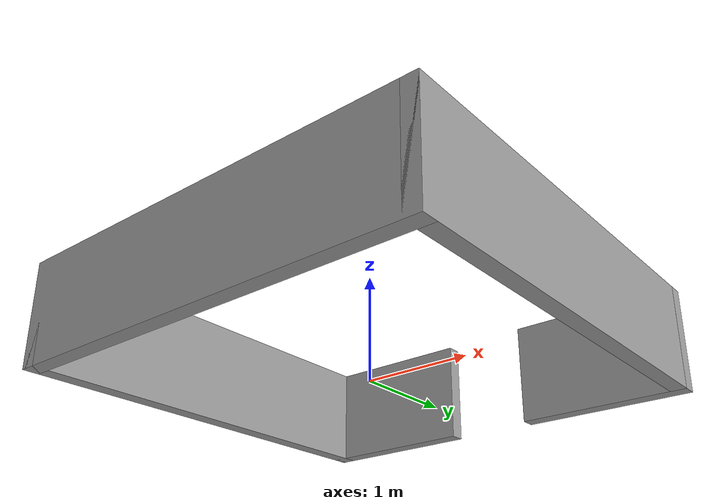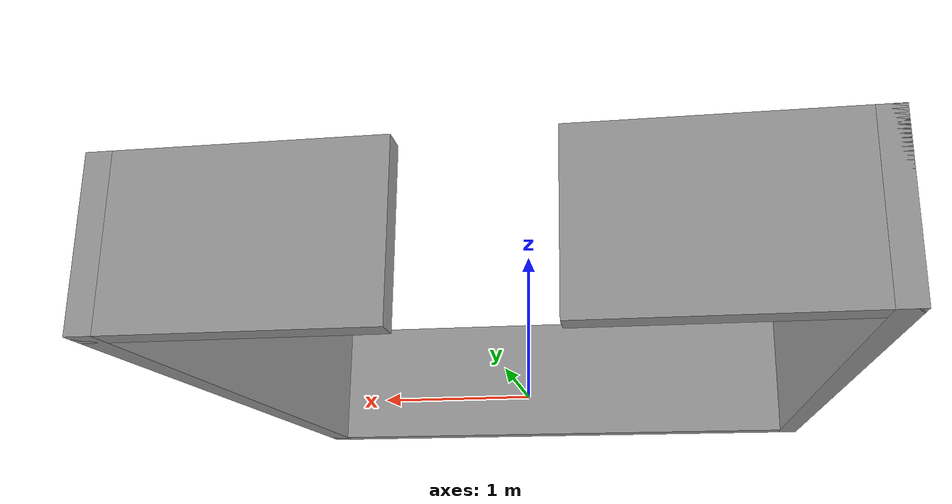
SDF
<?xml version='1.0'?>
<sdf version='1.6'>
  <model name='test_next_object_walls'>
    <pose frame=''>0 0 0 0 -0 0</pose>
    <link name='Wall_14'>
      <collision name='Wall_14_Collision'>
        <geometry>
          <box>
            <size>4.15 0.15 1</size>
          </box>
        </geometry>
        <pose frame=''>0 0 0.5 0 -0 0</pose>
      </collision>
      <visual name='Wall_14_Visual'>
        <pose frame=''>0 0 0.5 0 -0 0</pose>
        <geometry>
          <box>
            <size>4.15 0.15 1</size>
          </box>
        </geometry>
        <material>
          <script>
            <uri>file://media/materials/scripts/gazebo.material</uri>
            <name>Gazebo/Grey</name>
          </script>
          <ambient>1 1 1 1</ambient>
        </material>
        <meta>
          <layer>0</layer>
        </meta>
      </visual>
      <pose frame=''>-2 0 0 0 -0 -1.5708</pose>
    </link>
    <link name='Wall_16'>
      <collision name='Wall_16_Collision'>
        <geometry>
          <box>
            <size>4.15 0.15 1</size>
          </box>
        </geometry>
        <pose frame=''>0 0 0.5 0 -0 0</pose>
      </collision>
      <visual name='Wall_16_Visual'>
        <pose frame=''>0 0 0.5 0 -0 0</pose>
        <geometry>
          <box>
            <size>4.15 0.15 1</size>
          </box>
        </geometry>
        <material>
          <script>
            <uri>file://media/materials/scripts/gazebo.material</uri>
            <name>Gazebo/Grey</name>
          </script>
          <ambient>1 1 1 1</ambient>
        </material>
        <meta>
          <layer>0</layer>
        </meta>
      </visual>
      <pose frame=''>0 -2 0 0 -0 0</pose>
    </link>
    <link name='Wall_18'>
      <collision name='Wall_18_Collision'>
        <geometry>
          <box>
            <size>4.15 0.15 1</size>
          </box>
        </geometry>
        <pose frame=''>0 0 0.5 0 -0 0</pose>
      </collision>
      <visual name='Wall_18_Visual'>
        <pose frame=''>0 0 0.5 0 -0 0</pose>
        <geometry>
          <box>
            <size>4.15 0.15 1</size>
          </box>
        </geometry>
        <material>
          <script>
            <uri>file://media/materials/scripts/gazebo.material</uri>
            <name>Gazebo/Grey</name>
          </script>
          <ambient>1 1 1 1</ambient>
        </material>
        <meta>
          <layer>0</layer>
        </meta>
      </visual>
      <pose frame=''>2 0 0 0 -0 1.5708</pose>
    </link>
    <link name='Wall_20'>
      <collision name='Wall_20_Collision'>
        <geometry>
          <box>
            <size>1.65 0.15 1</size>
          </box>
        </geometry>
        <pose frame=''>0 0 0.5 0 -0 0</pose>
      </collision>
      <visual name='Wall_20_Visual'>
        <pose frame=''>0 0 0.5 0 -0 0</pose>
        <geometry>
          <box>
            <size>1.65 0.15 1</size>
          </box>
        </geometry>
        <material>
          <script>
            <uri>file://media/materials/scripts/gazebo.material</uri>
            <name>Gazebo/Grey</name>
          </script>
          <ambient>1 1 1 1</ambient>
        </material>
        <meta>
          <layer>0</layer>
        </meta>
      </visual>
      <pose frame=''>-1.25 2 0 0 -0 0</pose>
    </link>
    <link name='Wall_22'>
      <collision name='Wall_22_Collision'>
        <geometry>
          <box>
            <size>1.65 0.15 1</size>
          </box>
        </geometry>
        <pose frame=''>0 0 0.5 0 -0 0</pose>
      </collision>
      <visual name='Wall_22_Visual'>
        <pose frame=''>0 0 0.5 0 -0 0</pose>
        <geometry>
          <box>
            <size>1.65 0.15 1</size>
          </box>
        </geometry>
        <material>
          <script>
            <uri>file://media/materials/scripts/gazebo.material</uri>
            <name>Gazebo/Grey</name>
          </script>
          <ambient>1 1 1 1</ambient>
        </material>
        <meta>
          <layer>0</layer>
        </meta>
      </visual>
      <pose frame=''>1.25 2 0 0 -0 3.14159</pose>
    </link>
    <static>1</static>
  </model>
</sdf>
